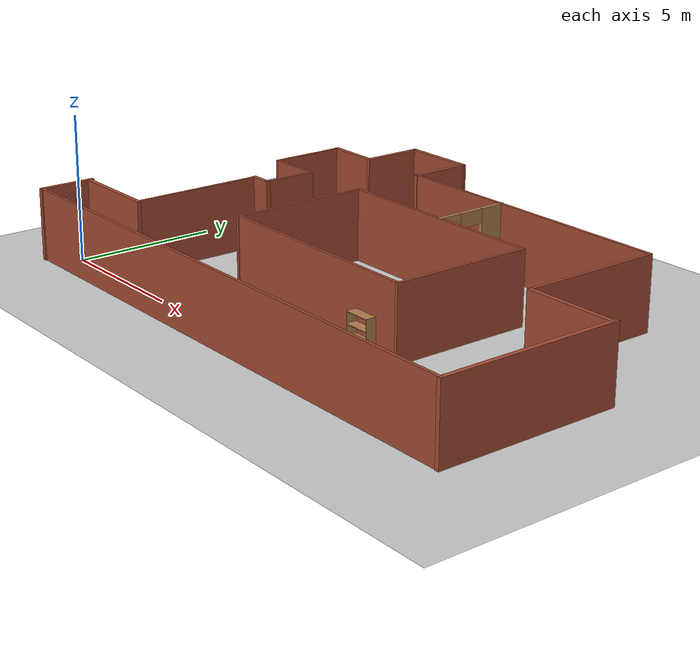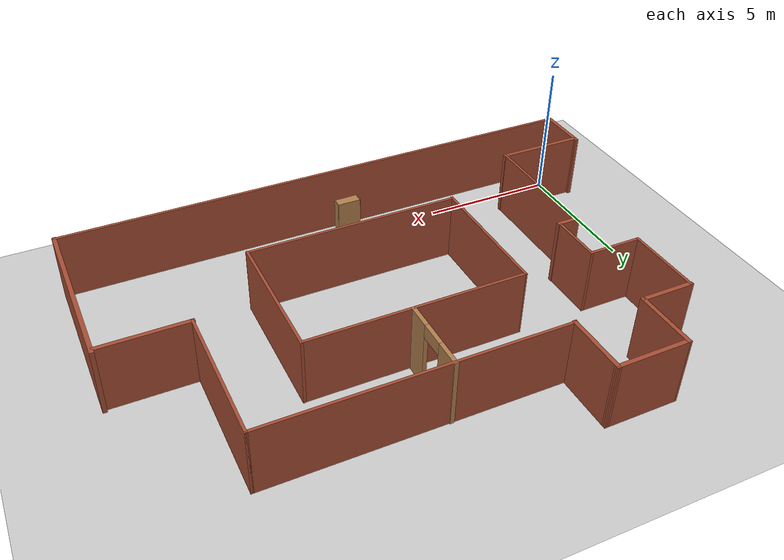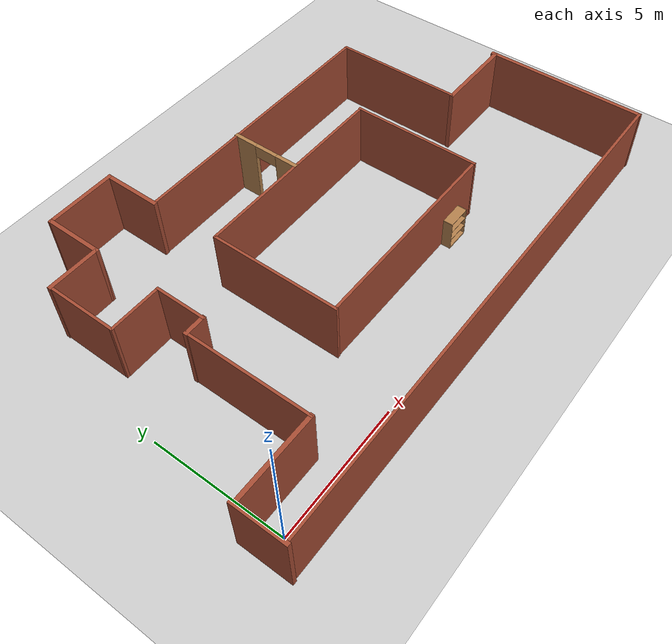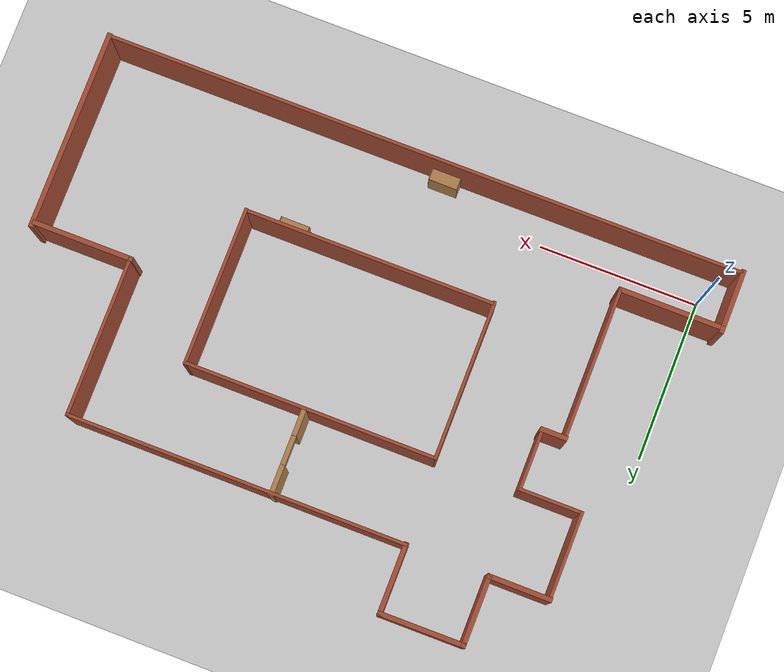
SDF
<sdf version="1.7">
 <world name="default">
  <light name="sun" type="directional">
   <pose>0 0 10 0 -0 0</pose>
   <diffuse>0.8 0.8 0.8 1</diffuse>
   <specular>0.2 0.2 0.2 1</specular>
   <attenuation>
    <range>1000</range>
    <constant>0.9</constant>
    <linear>0.01</linear>
    <quadratic>0.001</quadratic>
   </attenuation>
   <direction>-0.5 0.1 -0.9</direction>
   <spot><inner_angle>0</inner_angle><outer_angle>0</outer_angle><falloff>0</falloff></spot>
  </light>
  <model name="ground_plane">
   <static>1</static>
   <link name="link">
    <collision name="collision">
     <geometry><plane><normal>0 0 1</normal><size>100 100</size></plane></geometry>
     <surface><friction><ode><mu>100</mu><mu2>50</mu2></ode></friction></surface>
    </collision>
    <visual name="visual">
     <cast_shadows>0</cast_shadows>
     <geometry><plane><normal>0 0 1</normal><size>100 100</size></plane></geometry>
     <material>
      <script><uri>file://media/materials/scripts/gazebo.material</uri><name>Gazebo/Grey</name></script>
     </material>
    </visual>
   </link>
  </model>
  <gravity>0 0 -9.8</gravity>
  <magnetic_field>6e-06 2.3e-05 -4.2e-05</magnetic_field>
  <atmosphere type="adiabatic"/>
  <physics type="ode">
   <max_step_size>0.001</max_step_size>
   <real_time_factor>1</real_time_factor>
   <real_time_update_rate>1000</real_time_update_rate>
  </physics>
  <scene><ambient>0.4 0.4 0.4 1</ambient><background>0.7 0.7 0.7 1</background><shadows>1</shadows></scene>
  <audio><device>default</device></audio>
  <spherical_coordinates>
   <surface_model>EARTH_WGS84</surface_model>
   <latitude_deg>0</latitude_deg>
   <longitude_deg>0</longitude_deg>
   <elevation>0</elevation>
   <heading_deg>0</heading_deg>
  </spherical_coordinates>
  <model name="office">
   <pose>9.18738 5.57299 0 0 -0 0</pose>
   <link name="Wall_0">
    <collision name="Wall_0_Collision">
     <geometry><box><size>4.95 0.1 2.5</size></box></geometry>
     <pose>0 0 1.25 0 -0 0</pose>
    </collision>
    <visual name="Wall_0_Visual">
     <pose>0 0 1.25 0 -0 0</pose>
     <geometry><box><size>4.95 0.1 2.5</size></box></geometry>
     <material>
      <script><uri>file://media/materials/scripts/gazebo.material</uri><name>Gazebo/Bricks</name></script>
      <ambient>1 1 1 1</ambient>
     </material>
     <meta><layer>0</layer></meta>
    </visual>
    <pose>-3.50277 -0.643528 0 0 -0 -1.5708</pose>
   </link>
   <link name="Wall_11">
    <collision name="Wall_11_Collision">
     <geometry><box><size>2.25 0.15 2.5</size></box></geometry>
     <pose>0 0 1.25 0 -0 0</pose>
    </collision>
    <visual name="Wall_11_Visual">
     <pose>0 0 1.25 0 -0 0</pose>
     <geometry><box><size>2.25 0.15 2.5</size></box></geometry>
     <material>
      <script><uri>file://media/materials/scripts/gazebo.material</uri><name>Gazebo/Bricks</name></script>
      <ambient>1 1 1 1</ambient>
     </material>
     <meta><layer>0</layer></meta>
    </visual>
    <pose>-3.59277 5.46247 0 0 -0 1.5708</pose>
   </link>
   <link name="Wall_13">
    <collision name="Wall_13_Collision">
     <geometry><box><size>1.95 0.1 2.5</size></box></geometry>
     <pose>0 0 1.25 0 -0 0</pose>
    </collision>
    <visual name="Wall_13_Visual">
     <pose>0 0 1.25 0 -0 0</pose>
     <geometry><box><size>1.95 0.1 2.5</size></box></geometry>
     <material>
      <script><uri>file://media/materials/scripts/gazebo.material</uri><name>Gazebo/Bricks</name></script>
      <ambient>1 1 1 1</ambient>
     </material>
     <meta><layer>0</layer></meta>
    </visual>
    <pose>-6.10277 0.825472 0 0 -0 -1.5708</pose>
   </link>
   <link name="Wall_15">
    <collision name="Wall_15_Collision">
     <geometry><box><size>4.75 0.1 2.5</size></box></geometry>
     <pose>0 0 1.25 0 -0 0</pose>
    </collision>
    <visual name="Wall_15_Visual">
     <pose>0 0 1.25 0 -0 0</pose>
     <geometry><box><size>4.75 0.1 2.5</size></box></geometry>
     <material>
      <script><uri>file://media/materials/scripts/gazebo.material</uri><name>Gazebo/Bricks</name></script>
      <ambient>1 1 1 1</ambient>
     </material>
     <meta><layer>0</layer></meta>
    </visual>
    <pose>-6.80277 -2.42453 0 0 -0 -1.5708</pose>
   </link>
   <link name="Wall_17">
    <collision name="Wall_17_Collision">
     <geometry><box><size>0.850035 0.15 2.5</size></box></geometry>
     <pose>0 0 1.25 0 -0 0</pose>
    </collision>
    <visual name="Wall_17_Visual">
     <pose>0 0 1.25 0 -0 0</pose>
     <geometry><box><size>0.850035 0.15 2.5</size></box></geometry>
     <material>
      <script><uri>file://media/materials/scripts/gazebo.material</uri><name>Gazebo/Bricks</name></script>
      <ambient>1 1 1 1</ambient>
     </material>
     <meta><layer>0</layer></meta>
    </visual>
    <pose>-6.45277 -0.099528 0 0 -0 3.14159</pose>
   </link>
   <link name="Wall_2">
    <collision name="Wall_2_Collision">
     <geometry><box><size>7.7 0.1 2.5</size></box></geometry>
     <pose>0 0 1.25 0 -0 0</pose>
    </collision>
    <visual name="Wall_2_Visual">
     <pose>0 0 1.25 0 -0 0</pose>
     <geometry><box><size>7.7 0.1 2.5</size></box></geometry>
     <material>
      <script><uri>file://media/materials/scripts/gazebo.material</uri><name>Gazebo/Bricks</name></script>
      <ambient>1 1 1 1</ambient>
     </material>
     <meta><layer>0</layer></meta>
    </visual>
    <pose>0.363125 -3.03753 0 0 -0 0</pose>
   </link>
   <link name="Wall_20">
    <collision name="Wall_20_Collision">
     <geometry><box><size>20 0.1 2.5</size></box></geometry>
     <pose>0 0 1.25 0 -0 0</pose>
    </collision>
    <visual name="Wall_20_Visual">
     <pose>0 0 1.25 0 -0 0</pose>
     <geometry><box><size>20 0.1 2.5</size></box></geometry>
     <material>
      <script><uri>file://media/materials/scripts/gazebo.material</uri><name>Gazebo/Bricks</name></script>
      <ambient>1 1 1 1</ambient>
     </material>
     <meta><layer>0</layer></meta>
    </visual>
    <pose>0.023229 -6.48753 0 0 -0 0</pose>
   </link>
   <link name="Wall_22">
    <collision name="Wall_22_Collision">
     <geometry><box><size>2 0.1 2.5</size></box></geometry>
     <pose>0 0 1.25 0 -0 0</pose>
    </collision>
    <visual name="Wall_22_Visual">
     <pose>0 0 1.25 0 -0 0</pose>
     <geometry><box><size>2 0.1 2.5</size></box></geometry>
     <material>
      <script><uri>file://media/materials/scripts/gazebo.material</uri><name>Gazebo/Bricks</name></script>
      <ambient>1 1 1 1</ambient>
     </material>
     <meta><layer>0</layer></meta>
    </visual>
    <pose>-7.05277 1.75047 0 0 -0 3.14159</pose>
   </link>
   <link name="Wall_24">
    <collision name="Wall_24_Collision">
     <geometry><box><size>2.75 0.1 2.5</size></box></geometry>
     <pose>0 0 1.25 0 -0 0</pose>
    </collision>
    <visual name="Wall_24_Visual">
     <pose>0 0 1.25 0 -0 0</pose>
     <geometry><box><size>2.75 0.1 2.5</size></box></geometry>
     <material>
      <script><uri>file://media/materials/scripts/gazebo.material</uri><name>Gazebo/Bricks</name></script>
      <ambient>1 1 1 1</ambient>
     </material>
     <meta><layer>0</layer></meta>
    </visual>
    <pose>-8.00277 3.07547 0 0 -0 1.5708</pose>
   </link>
   <link name="Wall_30">
    <collision name="Wall_30_Collision">
     <geometry><box><size>2 0.15 2.5</size></box></geometry>
     <pose>0 0 1.25 0 -0 0</pose>
    </collision>
    <visual name="Wall_30_Visual">
     <pose>0 0 1.25 0 -0 0</pose>
     <geometry><box><size>2 0.15 2.5</size></box></geometry>
     <material>
      <script><uri>file://media/materials/scripts/gazebo.material</uri><name>Gazebo/Bricks</name></script>
      <ambient>1 1 1 1</ambient>
     </material>
     <meta><layer>0</layer></meta>
    </visual>
    <pose>-7.07777 4.40047 0 0 -0 0</pose>
   </link>
   <link name="Wall_32">
    <collision name="Wall_32_Collision">
     <geometry><box><size>2.25 0.15 2.5</size></box></geometry>
     <pose>0 0 1.25 0 -0 0</pose>
    </collision>
    <visual name="Wall_32_Visual">
     <pose>0 0 1.25 0 -0 0</pose>
     <geometry><box><size>2.25 0.15 2.5</size></box></geometry>
     <material>
      <script><uri>file://media/materials/scripts/gazebo.material</uri><name>Gazebo/Bricks</name></script>
      <ambient>1 1 1 1</ambient>
     </material>
     <meta><layer>0</layer></meta>
    </visual>
    <pose>-6.15277 5.45047 0 0 -0 1.5708</pose>
   </link>
   <link name="Wall_35">
    <collision name="Wall_35_Collision">
     <geometry><box><size>2.71003 0.15 2.5</size></box></geometry>
     <pose>0 0 1.25 0 -0 0</pose>
    </collision>
    <visual name="Wall_35_Visual">
     <pose>0 0 1.25 0 -0 0</pose>
     <geometry><box><size>2.71003 0.15 2.5</size></box></geometry>
     <material>
      <script><uri>file://media/materials/scripts/gazebo.material</uri><name>Gazebo/Bricks</name></script>
      <ambient>1 1 1 1</ambient>
     </material>
     <meta><layer>0</layer></meta>
    </visual>
    <pose>-4.87277 6.50647 0 0 -0 -3.13691</pose>
   </link>
   <link name="Wall_39">
    <pose>0.544148 3.11955 0 0 -0 -1.5708</pose>
    <visual name="Wall_39_Visual_0">
     <pose>-0.897111 0 1.25 0 -0 0</pose>
     <geometry><box><size>0.955779 0.15 2.5</size></box></geometry>
     <material>
      <script><uri>file://media/materials/scripts/gazebo.material</uri><name>Gazebo/Wood</name></script>
      <ambient>1 1 1 1</ambient>
     </material>
     <meta><layer>0</layer></meta>
    </visual>
    <collision name="Wall_39_Collision_0">
     <geometry><box><size>0.955779 0.15 2.5</size></box></geometry>
     <pose>-0.897111 0 1.25 0 -0 0</pose>
    </collision>
    <visual name="Wall_39_Visual_1">
     <pose>0.927889 0 1.25 0 -0 0</pose>
     <geometry><box><size>0.894221 0.15 2.5</size></box></geometry>
     <material>
      <script><uri>file://media/materials/scripts/gazebo.material</uri><name>Gazebo/Wood</name></script>
      <ambient>1 1 1 1</ambient>
     </material>
     <meta><layer>0</layer></meta>
    </visual>
    <collision name="Wall_39_Collision_1">
     <geometry><box><size>0.894221 0.15 2.5</size></box></geometry>
     <pose>0.927889 0 1.25 0 -0 0</pose>
    </collision>
    <visual name="Wall_39_Visual_2">
     <pose>0.030779 0 2.25 0 -0 0</pose>
     <geometry><box><size>0.9 0.15 0.5</size></box></geometry>
     <material>
      <script><uri>file://media/materials/scripts/gazebo.material</uri><name>Gazebo/Wood</name></script>
      <ambient>1 1 1 1</ambient>
     </material>
     <meta><layer>0</layer></meta>
    </visual>
    <collision name="Wall_39_Collision_2">
     <geometry><box><size>0.9 0.15 0.5</size></box></geometry>
     <pose>0.030779 0 2.25 0 -0 0</pose>
    </collision>
   </link>
   <link name="Wall_4">
    <collision name="Wall_4_Collision">
     <geometry><box><size>7.75 0.1 2.5</size></box></geometry>
     <pose>0 0 1.25 0 -0 0</pose>
    </collision>
    <visual name="Wall_4_Visual">
     <pose>0 0 1.25 0 -0 0</pose>
     <geometry><box><size>7.75 0.1 2.5</size></box></geometry>
     <material>
      <script><uri>file://media/materials/scripts/gazebo.material</uri><name>Gazebo/Bricks</name></script>
      <ambient>1 1 1 1</ambient>
     </material>
     <meta><layer>0</layer></meta>
    </visual>
    <pose>0.382628 1.78617 0 0 -0 0</pose>
   </link>
   <link name="Wall_42">
    <collision name="Wall_42_Collision">
     <geometry><box><size>2 0.15 2.5</size></box></geometry>
     <pose>0 0 1.25 0 -0 0</pose>
    </collision>
    <visual name="Wall_42_Visual">
     <pose>0 0 1.25 0 -0 0</pose>
     <geometry><box><size>2 0.15 2.5</size></box></geometry>
     <material>
      <script><uri>file://media/materials/scripts/gazebo.material</uri><name>Gazebo/Bricks</name></script>
      <ambient>1 1 1 1</ambient>
     </material>
     <meta><layer>0</layer></meta>
    </visual>
    <pose>-9.97323 -5.58782 0 0 -0 -1.5708</pose>
   </link>
   <link name="Wall_47">
    <collision name="Wall_47_Collision">
     <geometry><box><size>3.25 0.15 2.5</size></box></geometry>
     <pose>0 0 1.25 0 -0 0</pose>
    </collision>
    <visual name="Wall_47_Visual">
     <pose>0 0 1.25 0 -0 0</pose>
     <geometry><box><size>3.25 0.15 2.5</size></box></geometry>
     <material>
      <script><uri>file://media/materials/scripts/gazebo.material</uri><name>Gazebo/Bricks</name></script>
      <ambient>1 1 1 1</ambient>
     </material>
     <meta><layer>0</layer></meta>
    </visual>
    <pose>-8.35277 -4.74953 0 0 -0 3.14159</pose>
   </link>
   <link name="Wall_49">
    <collision name="Wall_49_Collision">
     <geometry><box><size>4.994 0.1 2.5</size></box></geometry>
     <pose>0 0 1.25 0 -0 0</pose>
    </collision>
    <visual name="Wall_49_Visual">
     <pose>0 0 1.25 0 -0 0</pose>
     <geometry><box><size>4.994 0.1 2.5</size></box></geometry>
     <material>
      <script><uri>file://media/materials/scripts/gazebo.material</uri><name>Gazebo/Bricks</name></script>
      <ambient>1 1 1 1</ambient>
     </material>
     <meta><layer>0</layer></meta>
    </visual>
    <pose>6.89723 1.96547 0 0 -0 -1.5708</pose>
   </link>
   <link name="Wall_51">
    <collision name="Wall_51_Collision">
     <geometry><box><size>6.25 0.15 2.5</size></box></geometry>
     <pose>0 0 1.25 0 -0 0</pose>
    </collision>
    <visual name="Wall_51_Visual">
     <pose>0 0 1.25 0 -0 0</pose>
     <geometry><box><size>6.25 0.15 2.5</size></box></geometry>
     <material>
      <script><uri>file://media/materials/scripts/gazebo.material</uri><name>Gazebo/Bricks</name></script>
      <ambient>1 1 1 1</ambient>
     </material>
     <meta><layer>0</layer></meta>
    </visual>
    <pose>9.97323 -3.43753 0 0 -0 1.5708</pose>
   </link>
   <link name="Wall_53">
    <collision name="Wall_53_Collision">
     <geometry><box><size>3.15651 0.15 2.5</size></box></geometry>
     <pose>0 0 1.25 0 -0 0</pose>
    </collision>
    <visual name="Wall_53_Visual">
     <pose>0 0 1.25 0 -0 0</pose>
     <geometry><box><size>3.15651 0.15 2.5</size></box></geometry>
     <material>
      <script><uri>file://media/materials/scripts/gazebo.material</uri><name>Gazebo/Bricks</name></script>
      <ambient>1 1 1 1</ambient>
     </material>
     <meta><layer>0</layer></meta>
    </visual>
    <pose>8.40048 -0.481733 0 0 -0 -0.000137</pose>
   </link>
   <link name="Wall_6">
    <collision name="Wall_6_Collision">
     <geometry><box><size>4.94986 0.1 2.5</size></box></geometry>
     <pose>0 0 1.25 0 -0 0</pose>
    </collision>
    <visual name="Wall_6_Visual">
     <pose>0 0 1.25 0 -0 0</pose>
     <geometry><box><size>4.94986 0.1 2.5</size></box></geometry>
     <material>
      <script><uri>file://media/materials/scripts/gazebo.material</uri><name>Gazebo/Bricks</name></script>
      <ambient>1 1 1 1</ambient>
     </material>
     <meta><layer>0</layer></meta>
    </visual>
    <pose>4.26823 -0.625528 0 0 -0 -1.5708</pose>
   </link>
   <link name="Wall_9">
    <collision name="Wall_9_Collision">
     <geometry><box><size>10.59 0.1 2.5</size></box></geometry>
     <pose>0 0 1.25 0 -0 0</pose>
    </collision>
    <visual name="Wall_9_Visual">
     <pose>0 0 1.25 0 -0 0</pose>
     <geometry><box><size>10.59 0.1 2.5</size></box></geometry>
     <material>
      <script><uri>file://media/materials/scripts/gazebo.material</uri><name>Gazebo/Bricks</name></script>
      <ambient>1 1 1 1</ambient>
     </material>
     <meta><layer>0</layer></meta>
    </visual>
    <pose>1.65223 4.41247 0 0 -0 0</pose>
   </link>
   <static>1</static>
  </model>
  <model name="bookshelf">
   <static>1</static>
   <link name="link">
    <inertial><mass>1</mass></inertial>
    <collision name="back">
     <pose>0 0.005 0.6 0 -0 0</pose>
     <geometry><box><size>0.9 0.01 1.2</size></box></geometry>
    </collision>
    <visual name="visual1">
     <pose>0 0.005 0.6 0 -0 0</pose>
     <geometry><box><size>0.9 0.01 1.2</size></box></geometry>
     <material>
      <script><uri>file://media/materials/scripts/gazebo.material</uri><name>Gazebo/Wood</name></script>
     </material>
    </visual>
    <collision name="left_side">
     <pose>0.45 -0.195 0.6 0 -0 0</pose>
     <geometry><box><size>0.02 0.4 1.2</size></box></geometry>
    </collision>
    <visual name="visual2">
     <pose>0.45 -0.195 0.6 0 -0 0</pose>
     <geometry><box><size>0.02 0.4 1.2</size></box></geometry>
     <material>
      <script><uri>file://media/materials/scripts/gazebo.material</uri><name>Gazebo/Wood</name></script>
     </material>
    </visual>
    <collision name="right_side">
     <pose>-0.45 -0.195 0.6 0 -0 0</pose>
     <geometry><box><size>0.02 0.4 1.2</size></box></geometry>
    </collision>
    <visual name="visual3">
     <pose>-0.45 -0.195 0.6 0 -0 0</pose>
     <geometry><box><size>0.02 0.4 1.2</size></box></geometry>
     <material>
      <script><uri>file://media/materials/scripts/gazebo.material</uri><name>Gazebo/Wood</name></script>
     </material>
    </visual>
    <collision name="bottom">
     <pose>0 -0.195 0.03 0 -0 0</pose>
     <geometry><box><size>0.88 0.4 0.06</size></box></geometry>
    </collision>
    <visual name="visual4">
     <pose>0 -0.195 0.03 0 -0 0</pose>
     <geometry><box><size>0.88 0.4 0.06</size></box></geometry>
     <material>
      <script><uri>file://media/materials/scripts/gazebo.material</uri><name>Gazebo/Wood</name></script>
     </material>
    </visual>
    <collision name="top">
     <pose>0 -0.195 1.19 0 -0 0</pose>
     <geometry><box><size>0.88 0.4 0.02</size></box></geometry>
    </collision>
    <visual name="visual5">
     <pose>0 -0.195 1.19 0 -0 0</pose>
     <geometry><box><size>0.88 0.4 0.02</size></box></geometry>
     <material>
      <script><uri>file://media/materials/scripts/gazebo.material</uri><name>Gazebo/Wood</name></script>
     </material>
    </visual>
    <collision name="low_shelf">
     <pose>0 -0.195 0.43 0 -0 0</pose>
     <geometry><box><size>0.88 0.4 0.02</size></box></geometry>
    </collision>
    <visual name="visual6">
     <pose>0 -0.195 0.43 0 -0 0</pose>
     <geometry><box><size>0.88 0.4 0.02</size></box></geometry>
     <material>
      <script><uri>file://media/materials/scripts/gazebo.material</uri><name>Gazebo/Wood</name></script>
     </material>
    </visual>
    <collision name="high_shelf">
     <pose>0 -0.195 0.8 0 -0 0</pose>
     <geometry><box><size>0.88 0.4 0.02</size></box></geometry>
    </collision>
    <visual name="visual7">
     <pose>0 -0.195 0.8 0 -0 0</pose>
     <geometry><box><size>0.88 0.4 0.02</size></box></geometry>
     <material>
      <script><uri>file://media/materials/scripts/gazebo.material</uri><name>Gazebo/Wood</name></script>
     </material>
    </visual>
   </link>
   <pose>12.1076 2.5183 0 0 -0 0</pose>
  </model>
  <model name="bookshelf_0">
   <static>1</static>
   <link name="link">
    <inertial><mass>1</mass></inertial>
    <collision name="back">
     <pose>0 0.005 0.6 0 -0 0</pose>
     <geometry><box><size>0.9 0.01 1.2</size></box></geometry>
    </collision>
    <visual name="visual1">
     <pose>0 0.005 0.6 0 -0 0</pose>
     <geometry><box><size>0.9 0.01 1.2</size></box></geometry>
     <material>
      <script><uri>file://media/materials/scripts/gazebo.material</uri><name>Gazebo/Wood</name></script>
     </material>
    </visual>
    <collision name="left_side">
     <pose>0.45 -0.195 0.6 0 -0 0</pose>
     <geometry><box><size>0.02 0.4 1.2</size></box></geometry>
    </collision>
    <visual name="visual2">
     <pose>0.45 -0.195 0.6 0 -0 0</pose>
     <geometry><box><size>0.02 0.4 1.2</size></box></geometry>
     <material>
      <script><uri>file://media/materials/scripts/gazebo.material</uri><name>Gazebo/Wood</name></script>
     </material>
    </visual>
    <collision name="right_side">
     <pose>-0.45 -0.195 0.6 0 -0 0</pose>
     <geometry><box><size>0.02 0.4 1.2</size></box></geometry>
    </collision>
    <visual name="visual3">
     <pose>-0.45 -0.195 0.6 0 -0 0</pose>
     <geometry><box><size>0.02 0.4 1.2</size></box></geometry>
     <material>
      <script><uri>file://media/materials/scripts/gazebo.material</uri><name>Gazebo/Wood</name></script>
     </material>
    </visual>
    <collision name="bottom">
     <pose>0 -0.195 0.03 0 -0 0</pose>
     <geometry><box><size>0.88 0.4 0.06</size></box></geometry>
    </collision>
    <visual name="visual4">
     <pose>0 -0.195 0.03 0 -0 0</pose>
     <geometry><box><size>0.88 0.4 0.06</size></box></geometry>
     <material>
      <script><uri>file://media/materials/scripts/gazebo.material</uri><name>Gazebo/Wood</name></script>
     </material>
    </visual>
    <collision name="top">
     <pose>0 -0.195 1.19 0 -0 0</pose>
     <geometry><box><size>0.88 0.4 0.02</size></box></geometry>
    </collision>
    <visual name="visual5">
     <pose>0 -0.195 1.19 0 -0 0</pose>
     <geometry><box><size>0.88 0.4 0.02</size></box></geometry>
     <material>
      <script><uri>file://media/materials/scripts/gazebo.material</uri><name>Gazebo/Wood</name></script>
     </material>
    </visual>
    <collision name="low_shelf">
     <pose>0 -0.195 0.43 0 -0 0</pose>
     <geometry><box><size>0.88 0.4 0.02</size></box></geometry>
    </collision>
    <visual name="visual6">
     <pose>0 -0.195 0.43 0 -0 0</pose>
     <geometry><box><size>0.88 0.4 0.02</size></box></geometry>
     <material>
      <script><uri>file://media/materials/scripts/gazebo.material</uri><name>Gazebo/Wood</name></script>
     </material>
    </visual>
    <collision name="high_shelf">
     <pose>0 -0.195 0.8 0 -0 0</pose>
     <geometry><box><size>0.88 0.4 0.02</size></box></geometry>
    </collision>
    <visual name="visual7">
     <pose>0 -0.195 0.8 0 -0 0</pose>
     <geometry><box><size>0.88 0.4 0.02</size></box></geometry>
     <material>
      <script><uri>file://media/materials/scripts/gazebo.material</uri><name>Gazebo/Wood</name></script>
     </material>
    </visual>
   </link>
   <pose>8.40515 -0.513599 0 0 -0 0</pose>
  </model>
 </world>
</sdf>
